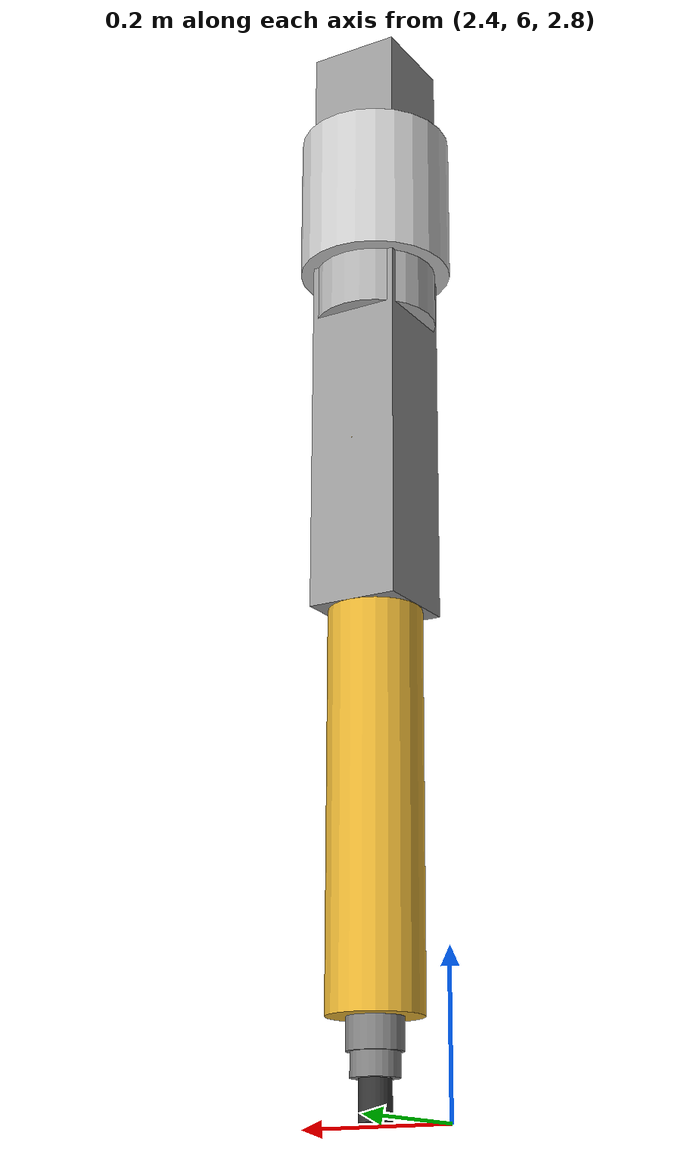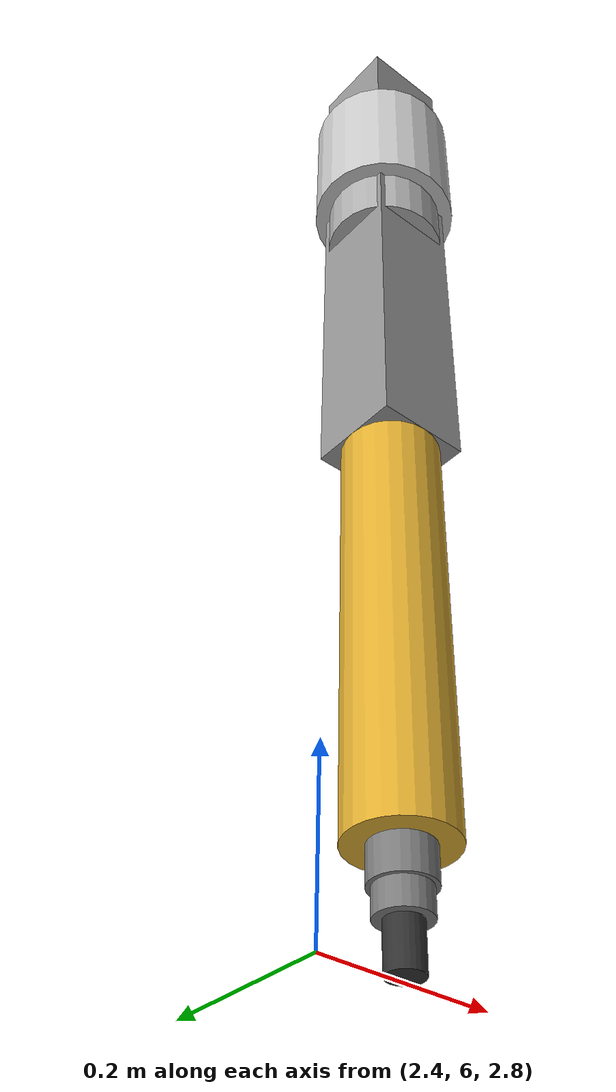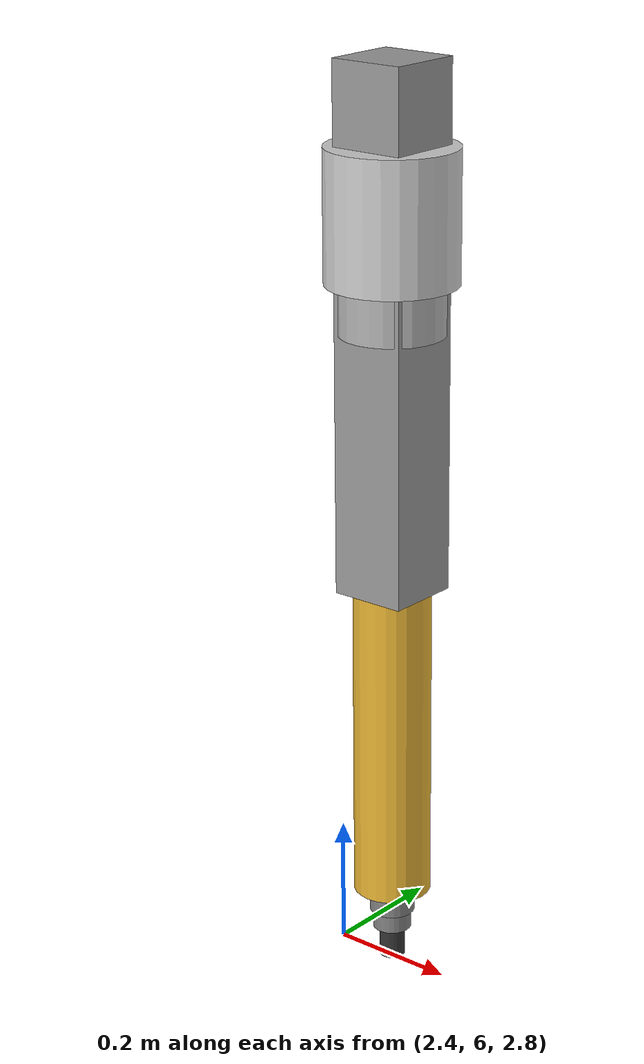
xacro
<?xml version="1.0"?>
<robot name="giraffe_robot" xmlns:xacro="http://www.ros.org/wiki/xacro">

    <!-- Properties -->
    <xacro:property name="PI" value="3.14159265"/>
    <xacro:property name="PI_2" value="1.57079633"/>

    <!-- Robot mounting position -->
    <xacro:property name="mount_x" value="2.5"/>
    <xacro:property name="mount_y" value="6.0"/>
    <xacro:property name="mount_z" value="4.0"/>

    <!-- Link dimensions -->
    <xacro:property name="base_radius" value="0.1"/>
    <xacro:property name="base_length" value="0.2"/>
    <xacro:property name="shoulder_radius" value="0.08"/>
    <xacro:property name="shoulder_length" value="0.15"/>
    <xacro:property name="upper_arm_size_x" value="0.12"/>
    <xacro:property name="upper_arm_size_y" value="0.12"/>
    <xacro:property name="upper_arm_size_z" value="0.8"/>
    <xacro:property name="telescopic_radius" value="0.06"/>
    <xacro:property name="telescopic_length" value="1.0"/>
    <xacro:property name="wrist1_radius" value="0.035"/>
    <xacro:property name="wrist1_length" value="0.08"/>
    <xacro:property name="wrist2_radius" value="0.03"/>
    <xacro:property name="wrist2_length" value="0.06"/>
    <xacro:property name="ee_radius" value="0.02"/>
    <xacro:property name="ee_length" value="0.1"/>

    <!-- Joint limits -->
    <xacro:property name="base_rotation_limit" value="${PI}"/>
    <xacro:property name="shoulder_tilt_limit" value="${PI_2}"/>
    <xacro:property name="telescopic_limit" value="6.5"/>
    <xacro:property name="wrist_rotation_limit" value="${PI}"/>
    <xacro:property name="wrist_tilt_limit" value="${PI} * 5/6"/>

    <!-- Mass properties -->
    <xacro:property name="base_mass" value="5.0"/>
    <xacro:property name="shoulder_mass" value="3.0"/>
    <xacro:property name="upper_arm_mass" value="4.0"/>
    <xacro:property name="telescopic_mass" value="2.0"/>
    <xacro:property name="wrist1_mass" value="1.0"/>
    <xacro:property name="wrist2_mass" value="0.5"/>
    <xacro:property name="ee_mass" value="0.2"/>

    <!-- Material definitions -->
    <xacro:macro name="material_base">
        <material name="base_color">
            <color rgba="0.8 0.8 0.8 1.0"/>
        </material>
    </xacro:macro>

    <xacro:macro name="material_shoulder">
        <material name="shoulder_color">
            <color rgba="0.7 0.7 0.7 1.0"/>
        </material>
    </xacro:macro>

    <xacro:macro name="material_upper_arm">
        <material name="upper_arm_color">
            <color rgba="0.6 0.6 0.6 1.0"/>
        </material>
    </xacro:macro>

    <xacro:macro name="material_telescopic">
        <material name="telescopic_color">
            <color rgba="0.9 0.7 0.2 1.0"/>
        </material>
    </xacro:macro>

    <xacro:macro name="material_wrist">
        <material name="wrist_color">
            <color rgba="0.5 0.5 0.5 1.0"/>
        </material>
    </xacro:macro>

    <xacro:macro name="material_microphone">
        <material name="microphone_color">
            <color rgba="0.2 0.2 0.2 1.0"/>
        </material>
    </xacro:macro>

    <!-- Inertia macros -->
    <xacro:macro name="cylinder_inertia" params="m r h">
        <inertia ixx="${m*(3*r*r + h*h)/12}" ixy="0" ixz="0"
                 iyy="${m*(3*r*r + h*h)/12}" iyz="0"
                 izz="${m*r*r/2}"/>
    </xacro:macro>

    <xacro:macro name="box_inertia" params="m x y z">
        <inertia ixx="${m*(y*y + z*z)/12}" ixy="0" ixz="0"
                 iyy="${m*(x*x + z*z)/12}" iyz="0"
                 izz="${m*(x*x + y*y)/12}"/>
    </xacro:macro>

    <!-- World link -->
    <link name="world"/>

    <!-- Robot mounted to ceiling -->
    <joint name="world_joint" type="fixed">
        <parent link="world"/>
        <child link="base_link"/>
        <origin rpy="0.0 0.0 0.0" xyz="${mount_x} ${mount_y} ${mount_z}"/>
    </joint>

    <!-- Base link - ceiling mount -->
    <link name="base_link">
        <visual>
            <geometry>
                <cylinder radius="${base_radius}" length="${base_length}"/>
            </geometry>
            <xacro:material_base/>
        </visual>
        <collision>
            <geometry>
                <cylinder radius="${base_radius}" length="${base_length}"/>
            </geometry>
        </collision>
        <inertial>
            <mass value="${base_mass}"/>
            <origin rpy="0 0 0" xyz="0.0 0.0 0.0"/>
            <xacro:cylinder_inertia m="${base_mass}" r="${base_radius}" h="${base_length}"/>
        </inertial>
    </link>

    <!-- Joint 1: First rotation of spherical joint (around Z-axis) -->
    <joint name="base_rotation_z" type="revolute">
        <parent link="base_link"/>
        <child link="shoulder_link"/>
        <origin rpy="0.0 0.0 0.0" xyz="0.0 0.0 ${-base_length/2}"/>
        <axis xyz="0 0 1"/>
        <limit effort="100.0" lower="${-base_rotation_limit}" upper="${base_rotation_limit}" velocity="2.0"/>
        <dynamics damping="0.1" friction="0.0"/>
    </joint>

    <!-- Shoulder link -->
    <link name="shoulder_link">
        <visual>
            <geometry>
                <cylinder radius="${shoulder_radius}" length="${shoulder_length}"/>
            </geometry>
            <xacro:material_shoulder/>
        </visual>
        <collision>
            <geometry>
                <cylinder radius="${shoulder_radius}" length="${shoulder_length}"/>
            </geometry>
        </collision>
        <inertial>
            <mass value="${shoulder_mass}"/>
            <origin rpy="0 0 0" xyz="0.0 0.0 0.0"/>
            <xacro:cylinder_inertia m="${shoulder_mass}" r="${shoulder_radius}" h="${shoulder_length}"/>
        </inertial>
    </link>

    <!-- Joint 2: Second rotation of spherical joint (around Y-axis) -->
    <joint name="shoulder_tilt_y" type="revolute">
        <parent link="shoulder_link"/>
        <child link="upper_arm_link"/>
        <origin rpy="0.0 0.0 0.0" xyz="0.0 0.0 ${-shoulder_length/2}"/>
        <axis xyz="0 1 0"/>
        <limit effort="100.0" lower="${-shoulder_tilt_limit}" upper="${shoulder_tilt_limit}" velocity="2.0"/>
        <dynamics damping="0.1" friction="0.0"/>
    </joint>

    <!-- Upper arm link -->
    <link name="upper_arm_link">
        <visual>
            <geometry>
                <box size="${upper_arm_size_x} ${upper_arm_size_y} ${upper_arm_size_z}"/>
            </geometry>
            <xacro:material_upper_arm/>
        </visual>
        <collision>
            <geometry>
                <box size="${upper_arm_size_x} ${upper_arm_size_y} ${upper_arm_size_z}"/>
            </geometry>
        </collision>
        <inertial>
            <mass value="${upper_arm_mass}"/>
            <origin rpy="0 0 0" xyz="0.0 0.0 0.0"/>
            <xacro:box_inertia m="${upper_arm_mass}" x="${upper_arm_size_x}" y="${upper_arm_size_y}" z="${upper_arm_size_z}"/>
        </inertial>
    </link>

    <!-- Joint 3: Prismatic joint for telescopic extension -->
    <joint name="telescopic_joint" type="prismatic">
        <parent link="upper_arm_link"/>
        <child link="telescopic_link"/>
        <origin rpy="0.0 0.0 0.0" xyz="0.0 0.0 ${-upper_arm_size_z/2}"/>
        <axis xyz="0 0 -1"/>
        <limit effort="200.0" lower="0.0" upper="${telescopic_limit}" velocity="1.0"/>
        <dynamics damping="0.2" friction="0.0"/>
    </joint>

    <!-- Telescopic link -->
    <link name="telescopic_link">
        <visual>
            <geometry>
                <cylinder radius="${telescopic_radius}" length="${telescopic_length}"/>
            </geometry>
            <xacro:material_telescopic/>
        </visual>
        <collision>
            <geometry>
                <cylinder radius="${telescopic_radius}" length="${telescopic_length}"/>
            </geometry>
        </collision>
        <inertial>
            <mass value="${telescopic_mass}"/>
            <origin rpy="0 0 0" xyz="0.0 0.0 0.0"/>
            <xacro:cylinder_inertia m="${telescopic_mass}" r="${telescopic_radius}" h="${telescopic_length}"/>
        </inertial>
    </link>

    <!-- Joint 4: Wrist rotation 1 (around Z-axis) -->
    <joint name="wrist_1_joint" type="revolute">
        <parent link="telescopic_link"/>
        <child link="wrist_1_link"/>
        <origin rpy="0.0 0.0 0.0" xyz="0.0 0.0 ${-telescopic_length/2}"/>
        <axis xyz="0 0 1"/>
        <limit effort="50.0" lower="${-wrist_rotation_limit}" upper="${wrist_rotation_limit}" velocity="3.0"/>
        <dynamics damping="0.05" friction="0.0"/>
    </joint>

    <!-- Wrist 1 link -->
    <link name="wrist_1_link">
        <visual>
            <geometry>
                <cylinder radius="${wrist1_radius}" length="${wrist1_length}"/>
            </geometry>
            <xacro:material_wrist/>
        </visual>
        <collision>
            <geometry>
                <cylinder radius="${wrist1_radius}" length="${wrist1_length}"/>
            </geometry>
        </collision>
        <inertial>
            <mass value="${wrist1_mass}"/>
            <origin rpy="0 0 0" xyz="0.0 0.0 0.0"/>
            <xacro:cylinder_inertia m="${wrist1_mass}" r="${wrist1_radius}" h="${wrist1_length}"/>
        </inertial>
    </link>

    <!-- Joint 5: Wrist rotation 2 (around Y-axis for pitch control) -->
    <joint name="wrist_2_joint" type="revolute">
        <parent link="wrist_1_link"/>
        <child link="wrist_2_link"/>
        <origin rpy="0.0 0.0 0.0" xyz="0.0 0.0 ${-wrist1_length/2}"/>
        <axis xyz="0 1 0"/>
        <limit effort="50.0" lower="${-wrist_tilt_limit}" upper="${wrist_tilt_limit}" velocity="3.0"/>
        <dynamics damping="0.05" friction="0.0"/>
    </joint>

    <!-- Wrist 2 link -->
    <link name="wrist_2_link">
        <visual>
            <geometry>
                <cylinder radius="${wrist2_radius}" length="${wrist2_length}"/>
            </geometry>
            <xacro:material_wrist/>
        </visual>
        <collision>
            <geometry>
                <cylinder radius="${wrist2_radius}" length="${wrist2_length}"/>
            </geometry>
        </collision>
        <inertial>
            <mass value="${wrist2_mass}"/>
            <origin rpy="0 0 0" xyz="0.0 0.0 0.0"/>
            <xacro:cylinder_inertia m="${wrist2_mass}" r="${wrist2_radius}" h="${wrist2_length}"/>
        </inertial>
    </link>

    <!-- End-effector joint (fixed) -->
    <joint name="ee_joint" type="fixed">
        <parent link="wrist_2_link"/>
        <child link="ee_link"/>
        <origin rpy="0.0 0.0 0.0" xyz="0.0 0.0 ${-wrist2_length/2}"/>
    </joint>

    <!-- End-effector link (microphone) -->
    <link name="ee_link">
        <visual>
            <geometry>
                <cylinder radius="${ee_radius}" length="${ee_length}"/>
            </geometry>
            <xacro:material_microphone/>
        </visual>
        <collision>
            <geometry>
                <cylinder radius="${ee_radius}" length="${ee_length}"/>
            </geometry>
        </collision>
        <inertial>
            <mass value="${ee_mass}"/>
            <origin rpy="0 0 0" xyz="0.0 0.0 0.0"/>
            <xacro:cylinder_inertia m="${ee_mass}" r="${ee_radius}" h="${ee_length}"/>
        </inertial>
    </link>

</robot>
